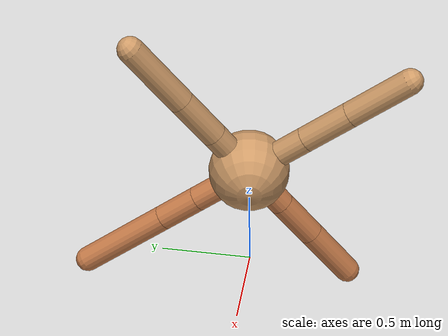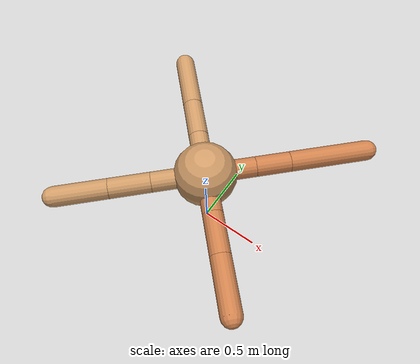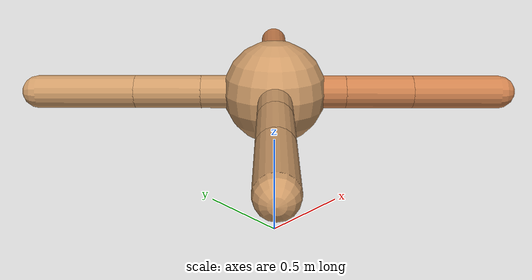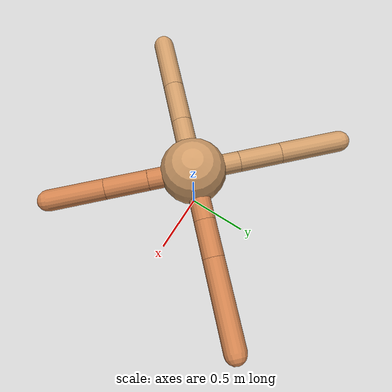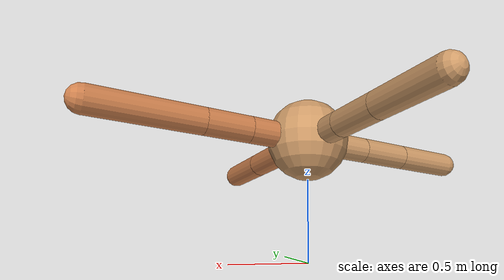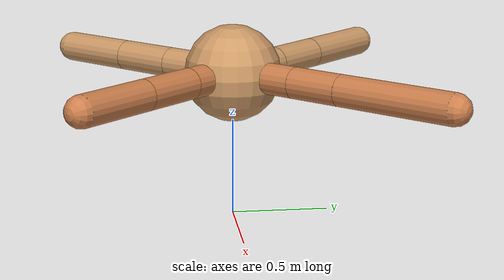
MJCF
<mujoco model="ant">
  <compiler angle="degree" coordinate="local" inertiafromgeom="true" />
  <option integrator="RK4" timestep="0.01" />
  <custom>
    <numeric data="0.0 0.0 0.55 1.0 0.0 0.0 0.0 0.0 1.0 0.0 -1.0 0.0 -1.0 0.0 1.0" name="init_qpos" />
  </custom>
  <default>
    <joint armature="1" damping="1" limited="true" />
    <geom conaffinity="0" condim="3" density="5.0" friction="1.5 0.1 0.1" margin="0.01" rgba="0.8 0.6 0.4 1" />
  </default>
  <worldbody>
    <body name="torso" pos="0 0 0.75">
      <geom name="torso_geom" pos="0 0 0" size="0.25" type="sphere" />

      <body name="front_left_leg" pos="0 0 0">
        <geom fromto="0.0 0.0 0.0 0.2789332120699665 0.2789332120699665 0.0" name="aux_1_geom" size="0.08" type="capsule" rgba=".8 .5 .3 1" />
        <body name="aux_1" pos="0.2789332120699665 0.2789332120699665 0.0">
          <joint axis="0 0 1" name="hip_1" pos="0.0 0.0 0.0" range="-40 40" type="hinge" />
          <geom fromto="0.0 0.0 0.0 0.19389803739875242 0.19389803739875242 0.0" name="left_leg_geom" size="0.08" type="capsule" rgba=".8 .5 .3 1" />
          <body pos="0.19389803739875242 0.19389803739875242 0.0" name="front_left_foot">
            <joint axis="-1 1 0" name="ankle_1" pos="0.0 0.0 0.0" range="30 100" type="hinge" />
            <geom fromto="0.0 0.0 0.0 0.44207759149665427 0.44207759149665427 0.0" name="left_ankle_geom" size="0.08" type="capsule" rgba=".8 .5 .3 1" />
          </body>
        </body>
      </body>
      <body name="front_right_leg" pos="0 0 0">
        <geom fromto="0.0 0.0 0.0 -0.25096534857901653 0.25096534857901653 0.0" name="aux_2_geom" size="0.08" type="capsule" />
        <body name="aux_2" pos="-0.25096534857901653 0.25096534857901653 0.0">
          <joint axis="0 0 1" name="hip_2" pos="0.0 0.0 0.0" range="-40 40" type="hinge" />
          <geom fromto="0.0 0.0 0.0 -0.22596885767737085 0.22596885767737085 0.0" name="right_leg_geom" size="0.08" type="capsule" />
          <body pos="-0.22596885767737085 0.22596885767737085 0.0" name="front_right_foot">
            <joint axis="1 1 0" name="ankle_2" pos="0.0 0.0 0.0" range="-100 -30" type="hinge" />
            <geom fromto="0.0 0.0 0.0 -0.33231439891402265 0.33231439891402265 0.0" name="right_ankle_geom" size="0.08" type="capsule" />
          </body>
        </body>
      </body>
      <body name="left_back_leg" pos="0 0 0">
        <geom fromto="0.0 0.0 0.0 -0.2968299903162772 -0.2968299903162772 0.0" name="aux_3_geom" size="0.08" type="capsule" />
        <body name="aux_3" pos="-0.2968299903162772 -0.2968299903162772 0.0">
          <joint axis="0 0 1" name="hip_3" pos="0.0 0.0 0.0" range="-40 40" type="hinge" />
          <geom fromto="0.0 0.0 0.0 -0.22873815881306073 -0.22873815881306073 0.0" name="back_leg_geom" size="0.08" type="capsule" />
          <body pos="-0.22873815881306073 -0.22873815881306073 0.0" name="left_back_foot">
            <joint axis="-1 1 0" name="ankle_3" pos="0.0 0.0 0.0" range="-100 -30" type="hinge" />
            <geom fromto="0.0 0.0 0.0 -0.29489399946003625 -0.29489399946003625 0.0" name="third_ankle_geom" size="0.08" type="capsule" />
          </body>
        </body>
      </body>
      <body name="right_back_leg" pos="0 0 0">
        <geom fromto="0.0 0.0 0.0 0.24174879799190802 -0.24174879799190802 0.0" name="aux_4_geom" size="0.08" type="capsule" rgba=".8 .5 .3 1" />
        <body name="aux_4" pos="0.24174879799190802 -0.24174879799190802 0.0">
          <joint axis="0 0 1" name="hip_4" pos="0.0 0.0 0.0" range="-40 40" type="hinge" />
          <geom fromto="0.0 0.0 0.0 0.22767381846647705 -0.22767381846647705 0.0" name="rightback_leg_geom" size="0.08" type="capsule" rgba=".8 .5 .3 1" />
          <body pos="0.22767381846647705 -0.22767381846647705 0.0" name="right_back_foot">
            <joint axis="1 1 0" name="ankle_4" pos="0.0 0.0 0.0" range="30 100" type="hinge" />
            <geom fromto="0.0 0.0 0.0 0.2951292352907349 -0.2951292352907349 0.0" name="fourth_ankle_geom" size="0.08" type="capsule" rgba=".8 .5 .3 1" />
          </body>
        </body>
      </body>
    </body>
  </worldbody>
  <actuator>
    <motor ctrllimited="true" ctrlrange="-1.0 1.0" joint="hip_4" gear="150" />
    <motor ctrllimited="true" ctrlrange="-1.0 1.0" joint="ankle_4" gear="150" />
    <motor ctrllimited="true" ctrlrange="-1.0 1.0" joint="hip_1" gear="150" />
    <motor ctrllimited="true" ctrlrange="-1.0 1.0" joint="ankle_1" gear="150" />
    <motor ctrllimited="true" ctrlrange="-1.0 1.0" joint="hip_2" gear="150" />
    <motor ctrllimited="true" ctrlrange="-1.0 1.0" joint="ankle_2" gear="150" />
    <motor ctrllimited="true" ctrlrange="-1.0 1.0" joint="hip_3" gear="150" />
    <motor ctrllimited="true" ctrlrange="-1.0 1.0" joint="ankle_3" gear="150" />
  </actuator>
</mujoco>
